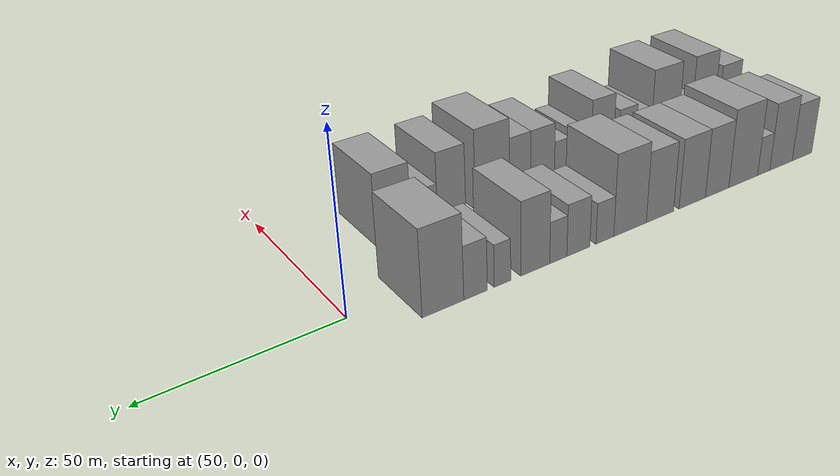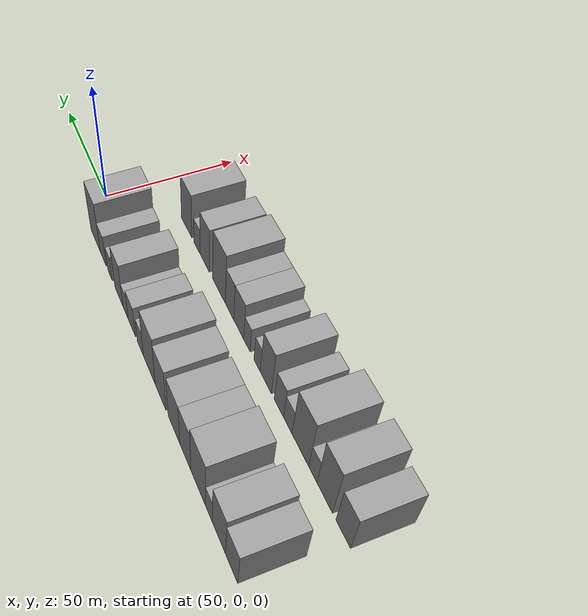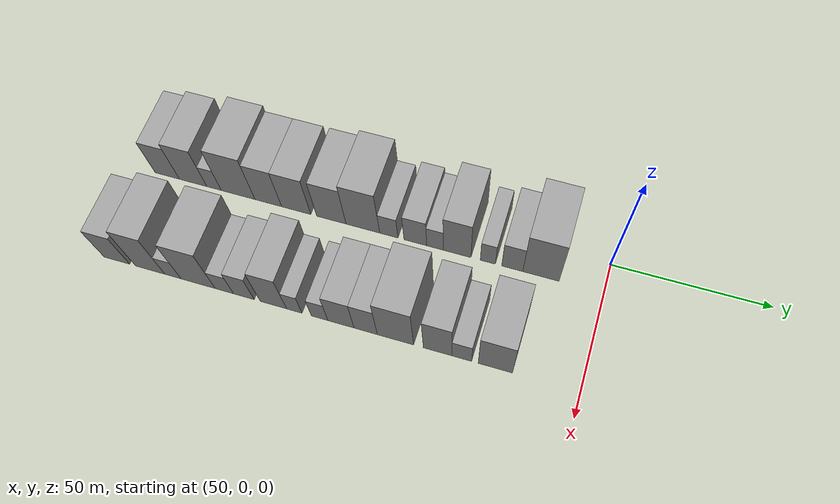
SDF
<sdf version="1.6">
 <world name="default">
  <model name="building_16">
   <static>1</static>
   <pose>50.0000 -144.1862 0 0.000000 0.000000 0.000000</pose>
   <link name="link">
    <pose>0 0 9.00 0 0 0</pose>
    <collision name="collision"><geometry><box><size>20.0000 8.5365 18.0000</size></box></geometry></collision>
    <visual name="visual">
     <cast_shadows>0</cast_shadows>
     <geometry><box><size>20.0000 8.5365 18.0000</size></box></geometry>
     <material>
      <script>
       <uri>model://grey_wall/materials/scripts</uri>
       <uri>model://grey_wall/materials/textures</uri>
       <name>vrc/grey_wall</name>
      </script>
     </material>
    </visual>
   </link>
  </model>
  <model name="building_17">
   <static>1</static>
   <pose>50.0000 -135.1311 0 0.000000 0.000000 0.000000</pose>
   <link name="link">
    <pose>0 0 10.50 0 0 0</pose>
    <collision name="collision"><geometry><box><size>20.0000 9.5737 21.0000</size></box></geometry></collision>
    <visual name="visual">
     <cast_shadows>0</cast_shadows>
     <geometry><box><size>20.0000 9.5737 21.0000</size></box></geometry>
     <material>
      <script>
       <uri>model://grey_wall/materials/scripts</uri>
       <uri>model://grey_wall/materials/textures</uri>
       <name>vrc/grey_wall</name>
      </script>
     </material>
    </visual>
   </link>
  </model>
  <model name="building_18">
   <static>1</static>
   <pose>50.0000 -127.8326 0 0.000000 0.000000 0.000000</pose>
   <link name="link">
    <pose>0 0 6.00 0 0 0</pose>
    <collision name="collision"><geometry><box><size>20.0000 5.0233 12.0000</size></box></geometry></collision>
    <visual name="visual">
     <cast_shadows>0</cast_shadows>
     <geometry><box><size>20.0000 5.0233 12.0000</size></box></geometry>
     <material>
      <script>
       <uri>model://grey_wall/materials/scripts</uri>
       <uri>model://grey_wall/materials/textures</uri>
       <name>vrc/grey_wall</name>
      </script>
     </material>
    </visual>
   </link>
  </model>
  <model name="building_19">
   <static>1</static>
   <pose>50.0000 -119.4954 0 0.000000 0.000000 0.000000</pose>
   <link name="link">
    <pose>0 0 12.00 0 0 0</pose>
    <collision name="collision"><geometry><box><size>20.0000 11.6512 24.0000</size></box></geometry></collision>
    <visual name="visual">
     <cast_shadows>0</cast_shadows>
     <geometry><box><size>20.0000 11.6512 24.0000</size></box></geometry>
     <material>
      <script>
       <uri>model://grey_wall/materials/scripts</uri>
       <uri>model://grey_wall/materials/textures</uri>
       <name>vrc/grey_wall</name>
      </script>
     </material>
    </visual>
   </link>
  </model>
  <model name="building_20">
   <static>1</static>
   <pose>50.0000 -109.1221 0 0.000000 0.000000 0.000000</pose>
   <link name="link">
    <pose>0 0 10.50 0 0 0</pose>
    <collision name="collision"><geometry><box><size>20.0000 9.0954 21.0000</size></box></geometry></collision>
    <visual name="visual">
     <cast_shadows>0</cast_shadows>
     <geometry><box><size>20.0000 9.0954 21.0000</size></box></geometry>
     <material>
      <script>
       <uri>model://grey_wall/materials/scripts</uri>
       <uri>model://grey_wall/materials/textures</uri>
       <name>vrc/grey_wall</name>
      </script>
     </material>
    </visual>
   </link>
  </model>
  <model name="building_21">
   <static>1</static>
   <pose>50.0000 -99.6407 0 0.000000 0.000000 0.000000</pose>
   <link name="link">
    <pose>0 0 10.50 0 0 0</pose>
    <collision name="collision"><geometry><box><size>20.0000 9.8675 21.0000</size></box></geometry></collision>
    <visual name="visual">
     <cast_shadows>0</cast_shadows>
     <geometry><box><size>20.0000 9.8675 21.0000</size></box></geometry>
     <material>
      <script>
       <uri>model://grey_wall/materials/scripts</uri>
       <uri>model://grey_wall/materials/textures</uri>
       <name>vrc/grey_wall</name>
      </script>
     </material>
    </visual>
   </link>
  </model>
  <model name="building_22">
   <static>1</static>
   <pose>50.0000 -87.7980 0 0.000000 0.000000 0.000000</pose>
   <link name="link">
    <pose>0 0 10.50 0 0 0</pose>
    <collision name="collision"><geometry><box><size>20.0000 9.8178 21.0000</size></box></geometry></collision>
    <visual name="visual">
     <cast_shadows>0</cast_shadows>
     <geometry><box><size>20.0000 9.8178 21.0000</size></box></geometry>
     <material>
      <script>
       <uri>model://grey_wall/materials/scripts</uri>
       <uri>model://grey_wall/materials/textures</uri>
       <name>vrc/grey_wall</name>
      </script>
     </material>
    </visual>
   </link>
  </model>
  <model name="building_23">
   <static>1</static>
   <pose>50.0000 -77.2852 0 0.000000 0.000000 0.000000</pose>
   <link name="link">
    <pose>0 0 12.00 0 0 0</pose>
    <collision name="collision"><geometry><box><size>20.0000 11.2078 24.0000</size></box></geometry></collision>
    <visual name="visual">
     <cast_shadows>0</cast_shadows>
     <geometry><box><size>20.0000 11.2078 24.0000</size></box></geometry>
     <material>
      <script>
       <uri>model://grey_wall/materials/scripts</uri>
       <uri>model://grey_wall/materials/textures</uri>
       <name>vrc/grey_wall</name>
      </script>
     </material>
    </visual>
   </link>
  </model>
  <model name="building_24">
   <static>1</static>
   <pose>50.0000 -68.6890 0 0.000000 0.000000 0.000000</pose>
   <link name="link">
    <pose>0 0 6.00 0 0 0</pose>
    <collision name="collision"><geometry><box><size>20.0000 5.9847 12.0000</size></box></geometry></collision>
    <visual name="visual">
     <cast_shadows>0</cast_shadows>
     <geometry><box><size>20.0000 5.9847 12.0000</size></box></geometry>
     <material>
      <script>
       <uri>model://grey_wall/materials/scripts</uri>
       <uri>model://grey_wall/materials/textures</uri>
       <name>vrc/grey_wall</name>
      </script>
     </material>
    </visual>
   </link>
  </model>
  <model name="building_25">
   <static>1</static>
   <pose>50.0000 -59.9812 0 0.000000 0.000000 0.000000</pose>
   <link name="link">
    <pose>0 0 7.50 0 0 0</pose>
    <collision name="collision"><geometry><box><size>20.0000 7.4309 15.0000</size></box></geometry></collision>
    <visual name="visual">
     <cast_shadows>0</cast_shadows>
     <geometry><box><size>20.0000 7.4309 15.0000</size></box></geometry>
     <material>
      <script>
       <uri>model://grey_wall/materials/scripts</uri>
       <uri>model://grey_wall/materials/textures</uri>
       <name>vrc/grey_wall</name>
      </script>
     </material>
    </visual>
   </link>
  </model>
  <model name="building_26">
   <static>1</static>
   <pose>50.0000 -53.5605 0 0.000000 0.000000 0.000000</pose>
   <link name="link">
    <pose>0 0 6.00 0 0 0</pose>
    <collision name="collision"><geometry><box><size>20.0000 5.4105 12.0000</size></box></geometry></collision>
    <visual name="visual">
     <cast_shadows>0</cast_shadows>
     <geometry><box><size>20.0000 5.4105 12.0000</size></box></geometry>
     <material>
      <script>
       <uri>model://grey_wall/materials/scripts</uri>
       <uri>model://grey_wall/materials/textures</uri>
       <name>vrc/grey_wall</name>
      </script>
     </material>
    </visual>
   </link>
  </model>
  <model name="building_27">
   <static>1</static>
   <pose>50.0000 -46.4148 0 0.000000 0.000000 0.000000</pose>
   <link name="link">
    <pose>0 0 10.50 0 0 0</pose>
    <collision name="collision"><geometry><box><size>20.0000 8.8810 21.0000</size></box></geometry></collision>
    <visual name="visual">
     <cast_shadows>0</cast_shadows>
     <geometry><box><size>20.0000 8.8810 21.0000</size></box></geometry>
     <material>
      <script>
       <uri>model://grey_wall/materials/scripts</uri>
       <uri>model://grey_wall/materials/textures</uri>
       <name>vrc/grey_wall</name>
      </script>
     </material>
    </visual>
   </link>
  </model>
  <model name="building_28">
   <static>1</static>
   <pose>50.0000 -36.5562 0 0.000000 0.000000 0.000000</pose>
   <link name="link">
    <pose>0 0 6.00 0 0 0</pose>
    <collision name="collision"><geometry><box><size>20.0000 4.8362 12.0000</size></box></geometry></collision>
    <visual name="visual">
     <cast_shadows>0</cast_shadows>
     <geometry><box><size>20.0000 4.8362 12.0000</size></box></geometry>
     <material>
      <script>
       <uri>model://grey_wall/materials/scripts</uri>
       <uri>model://grey_wall/materials/textures</uri>
       <name>vrc/grey_wall</name>
      </script>
     </material>
    </visual>
   </link>
  </model>
  <model name="building_29">
   <static>1</static>
   <pose>50.0000 -28.7875 0 0.000000 0.000000 0.000000</pose>
   <link name="link">
    <pose>0 0 7.50 0 0 0</pose>
    <collision name="collision"><geometry><box><size>20.0000 6.7012 15.0000</size></box></geometry></collision>
    <visual name="visual">
     <cast_shadows>0</cast_shadows>
     <geometry><box><size>20.0000 6.7012 15.0000</size></box></geometry>
     <material>
      <script>
       <uri>model://grey_wall/materials/scripts</uri>
       <uri>model://grey_wall/materials/textures</uri>
       <name>vrc/grey_wall</name>
      </script>
     </material>
    </visual>
   </link>
  </model>
  <model name="building_30">
   <static>1</static>
   <pose>50.0000 -19.7157 0 0.000000 0.000000 0.000000</pose>
   <link name="link">
    <pose>0 0 12.00 0 0 0</pose>
    <collision name="collision"><geometry><box><size>20.0000 11.4425 24.0000</size></box></geometry></collision>
    <visual name="visual">
     <cast_shadows>0</cast_shadows>
     <geometry><box><size>20.0000 11.4425 24.0000</size></box></geometry>
     <material>
      <script>
       <uri>model://grey_wall/materials/scripts</uri>
       <uri>model://grey_wall/materials/textures</uri>
       <name>vrc/grey_wall</name>
      </script>
     </material>
    </visual>
   </link>
  </model>
  <model name="building_74">
   <static>1</static>
   <pose>82.0000 -146.5614 0 0.000000 0.000000 0.000000</pose>
   <link name="link">
    <pose>0 0 9.00 0 0 0</pose>
    <collision name="collision"><geometry><box><size>20.0000 8.6710 18.0000</size></box></geometry></collision>
    <visual name="visual">
     <cast_shadows>0</cast_shadows>
     <geometry><box><size>20.0000 8.6710 18.0000</size></box></geometry>
     <material>
      <script>
       <uri>model://grey_wall/materials/scripts</uri>
       <uri>model://grey_wall/materials/textures</uri>
       <name>vrc/grey_wall</name>
      </script>
     </material>
    </visual>
   </link>
  </model>
  <model name="building_75">
   <static>1</static>
   <pose>82.0000 -135.3176 0 0.000000 0.000000 0.000000</pose>
   <link name="link">
    <pose>0 0 12.00 0 0 0</pose>
    <collision name="collision"><geometry><box><size>20.0000 9.8166 24.0000</size></box></geometry></collision>
    <visual name="visual">
     <cast_shadows>0</cast_shadows>
     <geometry><box><size>20.0000 9.8166 24.0000</size></box></geometry>
     <material>
      <script>
       <uri>model://grey_wall/materials/scripts</uri>
       <uri>model://grey_wall/materials/textures</uri>
       <name>vrc/grey_wall</name>
      </script>
     </material>
    </visual>
   </link>
  </model>
  <model name="building_76">
   <static>1</static>
   <pose>82.0000 -127.7190 0 0.000000 0.000000 0.000000</pose>
   <link name="link">
    <pose>0 0 6.00 0 0 0</pose>
    <collision name="collision"><geometry><box><size>20.0000 5.3807 12.0000</size></box></geometry></collision>
    <visual name="visual">
     <cast_shadows>0</cast_shadows>
     <geometry><box><size>20.0000 5.3807 12.0000</size></box></geometry>
     <material>
      <script>
       <uri>model://grey_wall/materials/scripts</uri>
       <uri>model://grey_wall/materials/textures</uri>
       <name>vrc/grey_wall</name>
      </script>
     </material>
    </visual>
   </link>
  </model>
  <model name="building_77">
   <static>1</static>
   <pose>82.0000 -119.3712 0 0.000000 0.000000 0.000000</pose>
   <link name="link">
    <pose>0 0 12.00 0 0 0</pose>
    <collision name="collision"><geometry><box><size>20.0000 11.3148 24.0000</size></box></geometry></collision>
    <visual name="visual">
     <cast_shadows>0</cast_shadows>
     <geometry><box><size>20.0000 11.3148 24.0000</size></box></geometry>
     <material>
      <script>
       <uri>model://grey_wall/materials/scripts</uri>
       <uri>model://grey_wall/materials/textures</uri>
       <name>vrc/grey_wall</name>
      </script>
     </material>
    </visual>
   </link>
  </model>
  <model name="building_78">
   <static>1</static>
   <pose>82.0000 -110.7311 0 0.000000 0.000000 0.000000</pose>
   <link name="link">
    <pose>0 0 6.00 0 0 0</pose>
    <collision name="collision"><geometry><box><size>20.0000 5.9654 12.0000</size></box></geometry></collision>
    <visual name="visual">
     <cast_shadows>0</cast_shadows>
     <geometry><box><size>20.0000 5.9654 12.0000</size></box></geometry>
     <material>
      <script>
       <uri>model://grey_wall/materials/scripts</uri>
       <uri>model://grey_wall/materials/textures</uri>
       <name>vrc/grey_wall</name>
      </script>
     </material>
    </visual>
   </link>
  </model>
  <model name="building_79">
   <static>1</static>
   <pose>82.0000 -104.3885 0 0.000000 0.000000 0.000000</pose>
   <link name="link">
    <pose>0 0 7.50 0 0 0</pose>
    <collision name="collision"><geometry><box><size>20.0000 6.7198 15.0000</size></box></geometry></collision>
    <visual name="visual">
     <cast_shadows>0</cast_shadows>
     <geometry><box><size>20.0000 6.7198 15.0000</size></box></geometry>
     <material>
      <script>
       <uri>model://grey_wall/materials/scripts</uri>
       <uri>model://grey_wall/materials/textures</uri>
       <name>vrc/grey_wall</name>
      </script>
     </material>
    </visual>
   </link>
  </model>
  <model name="building_80">
   <static>1</static>
   <pose>82.0000 -94.7712 0 0.000000 0.000000 0.000000</pose>
   <link name="link">
    <pose>0 0 10.50 0 0 0</pose>
    <collision name="collision"><geometry><box><size>20.0000 8.5149 21.0000</size></box></geometry></collision>
    <visual name="visual">
     <cast_shadows>0</cast_shadows>
     <geometry><box><size>20.0000 8.5149 21.0000</size></box></geometry>
     <material>
      <script>
       <uri>model://grey_wall/materials/scripts</uri>
       <uri>model://grey_wall/materials/textures</uri>
       <name>vrc/grey_wall</name>
      </script>
     </material>
    </visual>
   </link>
  </model>
  <model name="building_81">
   <static>1</static>
   <pose>82.0000 -88.0511 0 0.000000 0.000000 0.000000</pose>
   <link name="link">
    <pose>0 0 6.00 0 0 0</pose>
    <collision name="collision"><geometry><box><size>20.0000 4.9253 12.0000</size></box></geometry></collision>
    <visual name="visual">
     <cast_shadows>0</cast_shadows>
     <geometry><box><size>20.0000 4.9253 12.0000</size></box></geometry>
     <material>
      <script>
       <uri>model://grey_wall/materials/scripts</uri>
       <uri>model://grey_wall/materials/textures</uri>
       <name>vrc/grey_wall</name>
      </script>
     </material>
    </visual>
   </link>
  </model>
  <model name="building_82">
   <static>1</static>
   <pose>82.0000 -79.9479 0 0.000000 0.000000 0.000000</pose>
   <link name="link">
    <pose>0 0 6.00 0 0 0</pose>
    <collision name="collision"><geometry><box><size>20.0000 5.2811 12.0000</size></box></geometry></collision>
    <visual name="visual">
     <cast_shadows>0</cast_shadows>
     <geometry><box><size>20.0000 5.2811 12.0000</size></box></geometry>
     <material>
      <script>
       <uri>model://grey_wall/materials/scripts</uri>
       <uri>model://grey_wall/materials/textures</uri>
       <name>vrc/grey_wall</name>
      </script>
     </material>
    </visual>
   </link>
  </model>
  <model name="building_83">
   <static>1</static>
   <pose>82.0000 -73.1731 0 0.000000 0.000000 0.000000</pose>
   <link name="link">
    <pose>0 0 9.00 0 0 0</pose>
    <collision name="collision"><geometry><box><size>20.0000 8.2685 18.0000</size></box></geometry></collision>
    <visual name="visual">
     <cast_shadows>0</cast_shadows>
     <geometry><box><size>20.0000 8.2685 18.0000</size></box></geometry>
     <material>
      <script>
       <uri>model://grey_wall/materials/scripts</uri>
       <uri>model://grey_wall/materials/textures</uri>
       <name>vrc/grey_wall</name>
      </script>
     </material>
    </visual>
   </link>
  </model>
  <model name="building_84">
   <static>1</static>
   <pose>82.0000 -65.3909 0 0.000000 0.000000 0.000000</pose>
   <link name="link">
    <pose>0 0 9.00 0 0 0</pose>
    <collision name="collision"><geometry><box><size>20.0000 7.2960 18.0000</size></box></geometry></collision>
    <visual name="visual">
     <cast_shadows>0</cast_shadows>
     <geometry><box><size>20.0000 7.2960 18.0000</size></box></geometry>
     <material>
      <script>
       <uri>model://grey_wall/materials/scripts</uri>
       <uri>model://grey_wall/materials/textures</uri>
       <name>vrc/grey_wall</name>
      </script>
     </material>
    </visual>
   </link>
  </model>
  <model name="building_85">
   <static>1</static>
   <pose>82.0000 -56.0980 0 0.000000 0.000000 0.000000</pose>
   <link name="link">
    <pose>0 0 12.00 0 0 0</pose>
    <collision name="collision"><geometry><box><size>20.0000 11.2897 24.0000</size></box></geometry></collision>
    <visual name="visual">
     <cast_shadows>0</cast_shadows>
     <geometry><box><size>20.0000 11.2897 24.0000</size></box></geometry>
     <material>
      <script>
       <uri>model://grey_wall/materials/scripts</uri>
       <uri>model://grey_wall/materials/textures</uri>
       <name>vrc/grey_wall</name>
      </script>
     </material>
    </visual>
   </link>
  </model>
  <model name="building_86">
   <static>1</static>
   <pose>82.0000 -43.0546 0 0.000000 0.000000 0.000000</pose>
   <link name="link">
    <pose>0 0 10.50 0 0 0</pose>
    <collision name="collision"><geometry><box><size>20.0000 8.7971 21.0000</size></box></geometry></collision>
    <visual name="visual">
     <cast_shadows>0</cast_shadows>
     <geometry><box><size>20.0000 8.7971 21.0000</size></box></geometry>
     <material>
      <script>
       <uri>model://grey_wall/materials/scripts</uri>
       <uri>model://grey_wall/materials/textures</uri>
       <name>vrc/grey_wall</name>
      </script>
     </material>
    </visual>
   </link>
  </model>
  <model name="building_87">
   <static>1</static>
   <pose>82.0000 -35.6611 0 0.000000 0.000000 0.000000</pose>
   <link name="link">
    <pose>0 0 6.00 0 0 0</pose>
    <collision name="collision"><geometry><box><size>20.0000 5.9900 12.0000</size></box></geometry></collision>
    <visual name="visual">
     <cast_shadows>0</cast_shadows>
     <geometry><box><size>20.0000 5.9900 12.0000</size></box></geometry>
     <material>
      <script>
       <uri>model://grey_wall/materials/scripts</uri>
       <uri>model://grey_wall/materials/textures</uri>
       <name>vrc/grey_wall</name>
      </script>
     </material>
    </visual>
   </link>
  </model>
  <model name="building_88">
   <static>1</static>
   <pose>82.0000 -25.4842 0 0.000000 0.000000 0.000000</pose>
   <link name="link">
    <pose>0 0 10.50 0 0 0</pose>
    <collision name="collision"><geometry><box><size>20.0000 10.3637 21.0000</size></box></geometry></collision>
    <visual name="visual">
     <cast_shadows>0</cast_shadows>
     <geometry><box><size>20.0000 10.3637 21.0000</size></box></geometry>
     <material>
      <script>
       <uri>model://grey_wall/materials/scripts</uri>
       <uri>model://grey_wall/materials/textures</uri>
       <name>vrc/grey_wall</name>
      </script>
     </material>
    </visual>
   </link>
  </model>
 </world>
</sdf>
